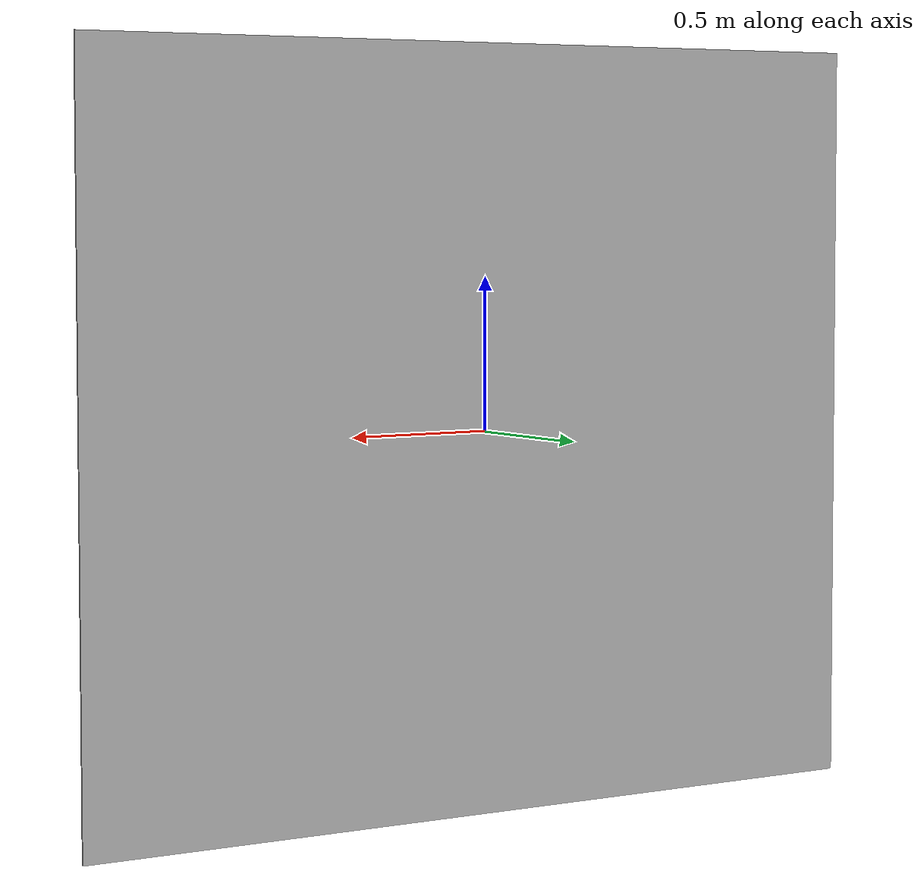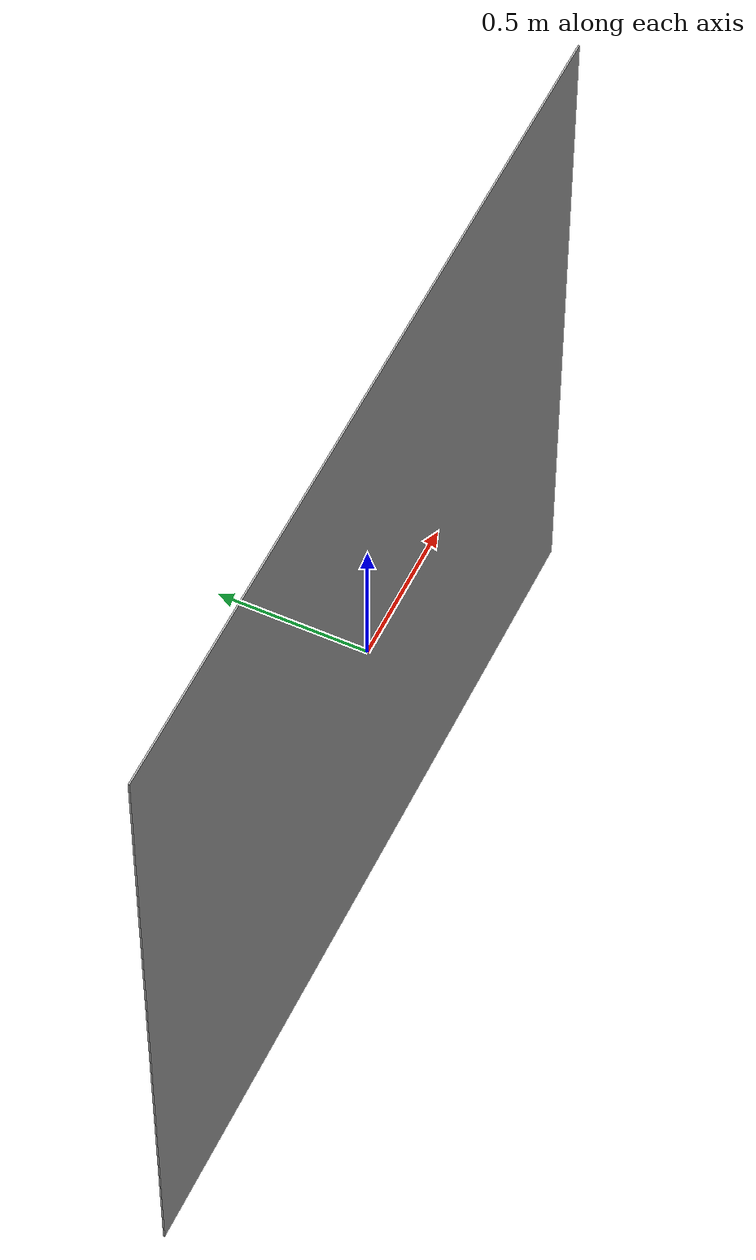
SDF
<?xml version='1.0'?>
<sdf version='1.5'>
  <model name="hall_wall_solar_system">
    <pose>0 0 0 0 0 0</pose>
    <static>true</static>
    <link name='model_body'>
      <collision name='collision'>
        <geometry>
          <box>
            <size>2.9 0.005 2.5</size>
          </box>
        </geometry>
      </collision>

      <visual name='visual'>
        <geometry>
          <box>
            <size>2.9 0.005 2.5</size>
          </box>
        </geometry>

        <material>
          <script>
            <uri>model://cr2_gazebo/models/ss_hq4/hall_wall_solar_system/materials/scripts</uri>
            <uri>model://cr2_gazebo/models/ss_hq4/hall_wall_solar_system/materials/textures</uri>
            <name>hall_wall_solar_system</name>
          </script>
        </material>
      </visual>

      <inertial>
        <pose> 0 0 0 0 0 0</pose>
        <inertia>
          <ixx>0.5208</ixx>
          <ixy>0</ixy>
          <ixz>0</ixz>
          <iyy>1.22</iyy>
          <iyz>0</iyz>
          <izz>0.7</izz>
        </inertia>
        <mass>1.0</mass>
      </inertial>
    </link>
  </model>
</sdf>
